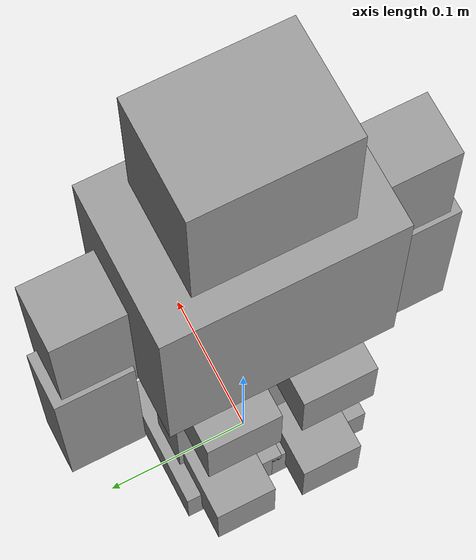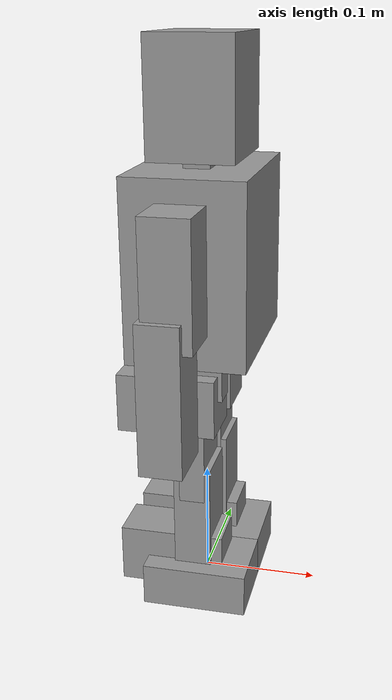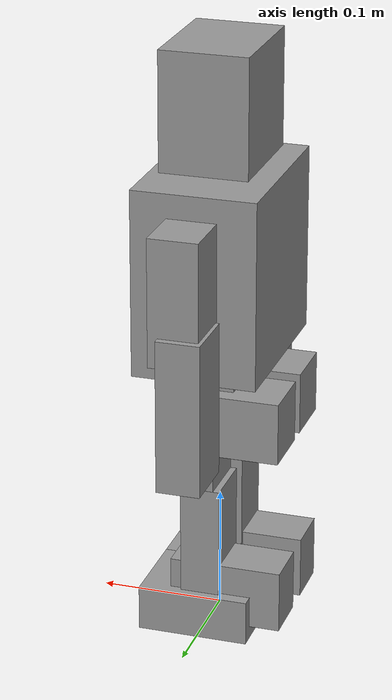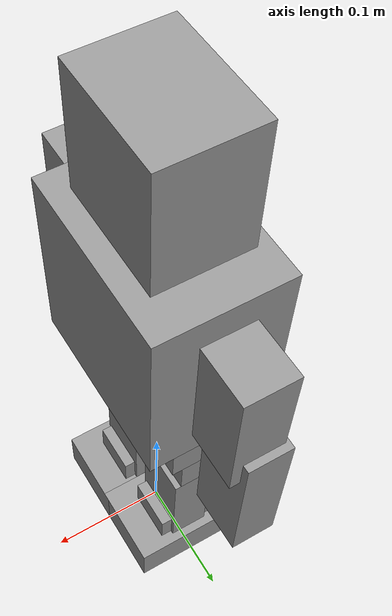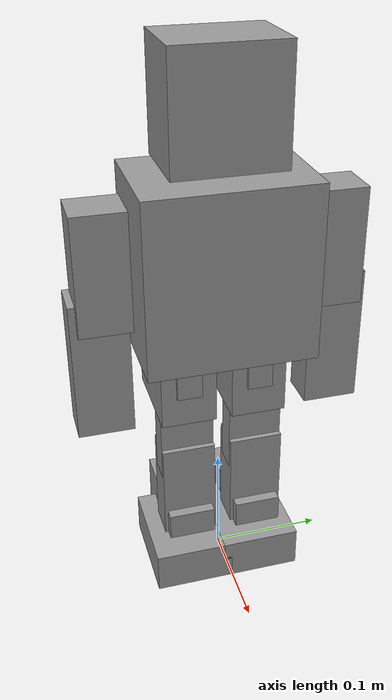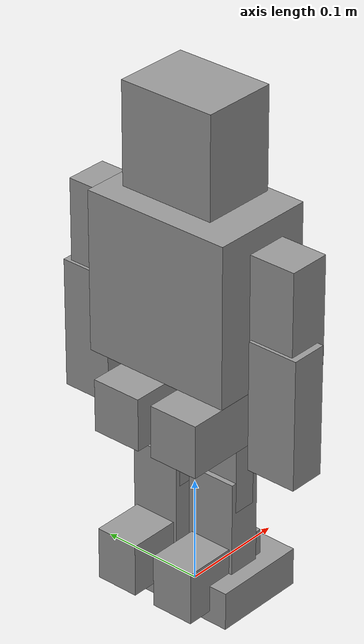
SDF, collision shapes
<sdf version="1.6">
 <model name="soccerbot">
  <link name="torso">
   <inertial>
    <mass>1</mass>
    <inertia>
     <ixx>0.003149</ixx>
     <ixy>0.000127</ixy>
     <ixz>0.000124</ixz>
     <iyy>0.004988</iyy>
     <iyz>8.9e-05</iyz>
     <izz>0.003395</izz>
    </inertia>
   </inertial>
   <pose>0 -0 0.301418 -0.037717 1.57079 1.53308</pose>
   <visual name="visual">
    <pose>-0.076 -0.05 -0.0725 0 -0 0</pose>
    <geometry><mesh><uri>model://meshes/Torso.stl</uri><scale>0.001 0.001 0.001</scale></mesh></geometry>
    <material>
     <lighting>1</lighting>
     <script><uri>file://media/materials/scripts/gazebo.material</uri><name>Gazebo/Grey</name></script>
     <shader type="vertex"><normal_map>__default__</normal_map></shader>
     <ambient>0.3 0.3 0.3 1</ambient>
     <diffuse>0.7 0.7 0.7 1</diffuse>
     <specular>0.01 0.01 0.01 1</specular>
     <emissive>0 0 0 1</emissive>
    </material>
   </visual>
   <collision name="collision">
    <geometry><box><size>0.152 0.1 0.145</size></box></geometry>
    <surface>
     <friction>
      <ode><mu>1</mu><mu2>1</mu2><fdir1>0 0 0</fdir1><slip1>0</slip1><slip2>0</slip2></ode>
      <torsional>
       <coefficient>1</coefficient>
       <patch_radius>0</patch_radius>
       <surface_radius>0</surface_radius>
       <use_patch_radius>1</use_patch_radius>
       <ode><slip>0</slip></ode>
      </torsional>
     </friction>
     <bounce><restitution_coefficient>0</restitution_coefficient><threshold>1e+06</threshold></bounce>
     <contact>
      <collide_without_contact>0</collide_without_contact>
      <collide_without_contact_bitmask>1</collide_without_contact_bitmask>
      <collide_bitmask>1</collide_bitmask>
      <ode>
       <soft_cfm>0</soft_cfm>
       <soft_erp>0.2</soft_erp>
       <kp>1e+13</kp>
       <kd>1</kd>
       <max_vel>0.01</max_vel>
       <min_depth>0</min_depth>
      </ode>
      <bullet>
       <split_impulse>1</split_impulse>
       <split_impulse_penetration_threshold>-0.01</split_impulse_penetration_threshold>
       <soft_cfm>0</soft_cfm>
       <soft_erp>0.2</soft_erp>
       <kp>1e+13</kp>
       <kd>1</kd>
      </bullet>
     </contact>
    </surface>
   </collision>
  </link>
  <link name="camera">
   <inertial>
    <mass>1</mass>
    <inertia>
     <ixx>0.166667</ixx>
     <ixy>0</ixy>
     <ixz>0</ixz>
     <iyy>0.166667</iyy>
     <iyz>0</iyz>
     <izz>0.166667</izz>
    </inertia>
   </inertial>
   <pose>0.1 -0 0.465818 0 -0 0</pose>
   <sensor name="camera1" type="camera">
    <update_rate>30</update_rate>
    <camera name="__default__">
     <horizontal_fov>1.39626</horizontal_fov>
     <image><width>320</width><height>240</height><format>R8G8B8</format></image>
     <clip><near>1</near><far>100</far></clip>
     <noise><type>gaussian</type><mean>0</mean><stddev>0.007</stddev></noise>
    </camera>
    <always_on>1</always_on>
    <visualize>1</visualize>
    <plugin name="camera_controller" filename="libgazebo_ros_camera.so">
     <alwaysOn>true</alwaysOn>
     <updateRate>0.0</updateRate>
     <cameraName>soccerbot/camera1</cameraName>
     <imageTopicName>image_raw</imageTopicName>
     <cameraInfoTopicName>camera_info</cameraInfoTopicName>
     <frameName>camera_link</frameName>
     <hackBaseline>0.07</hackBaseline>
     <distortionK1>0.0</distortionK1>
     <distortionK2>0.0</distortionK2>
     <distortionK3>0.0</distortionK3>
     <distortionT1>0.0</distortionT1>
     <distortionT2>0.0</distortionT2>
    </plugin>
   </sensor>
  </link>
  <link name="head">
   <inertial>
    <mass>1</mass>
    <inertia>
     <ixx>0.166667</ixx>
     <ixy>0</ixy>
     <ixz>0</ixz>
     <iyy>0.166667</iyy>
     <iyz>0</iyz>
     <izz>0.166667</izz>
    </inertia>
   </inertial>
   <pose>0 -0 0.395918 1.5708 -0 1.5708</pose>
   <visual name="visual">
    <geometry><mesh><uri>model://meshes/Head.stl</uri><scale>0.001 0.001 0.001</scale></mesh></geometry>
    <material>
     <lighting>1</lighting>
     <script><uri>file://media/materials/scripts/gazebo.material</uri><name>Gazebo/Grey</name></script>
     <shader type="vertex"><normal_map>__default__</normal_map></shader>
     <ambient>0.3 0.3 0.3 1</ambient>
     <diffuse>0.7 0.7 0.7 1</diffuse>
     <specular>0.01 0.01 0.01 1</specular>
     <emissive>0 0 0 1</emissive>
    </material>
   </visual>
   <collision name="collision">
    <pose>0 0.03648 0 0 -0 0</pose>
    <geometry><box><size>0.094 0.09596 0.0712</size></box></geometry>
    <surface>
     <friction>
      <ode><mu>1</mu><mu2>1</mu2><fdir1>0 0 0</fdir1><slip1>0</slip1><slip2>0</slip2></ode>
      <torsional>
       <coefficient>1</coefficient>
       <patch_radius>0</patch_radius>
       <surface_radius>0</surface_radius>
       <use_patch_radius>1</use_patch_radius>
       <ode><slip>0</slip></ode>
      </torsional>
     </friction>
     <bounce><restitution_coefficient>0</restitution_coefficient><threshold>1e+06</threshold></bounce>
     <contact>
      <collide_without_contact>0</collide_without_contact>
      <collide_without_contact_bitmask>1</collide_without_contact_bitmask>
      <collide_bitmask>1</collide_bitmask>
      <ode>
       <soft_cfm>0</soft_cfm>
       <soft_erp>0.2</soft_erp>
       <kp>1e+13</kp>
       <kd>1</kd>
       <max_vel>0.01</max_vel>
       <min_depth>0</min_depth>
      </ode>
      <bullet>
       <split_impulse>1</split_impulse>
       <split_impulse_penetration_threshold>-0.01</split_impulse_penetration_threshold>
       <soft_cfm>0</soft_cfm>
       <soft_erp>0.2</soft_erp>
       <kp>1e+13</kp>
       <kd>1</kd>
      </bullet>
     </contact>
    </surface>
   </collision>
  </link>
  <link name="left_ankle">
   <inertial>
    <mass>1</mass>
    <inertia>
     <ixx>0.166667</ixx>
     <ixy>0</ixy>
     <ixz>0</ixz>
     <iyy>0.166667</iyy>
     <iyz>0</iyz>
     <izz>0.166667</izz>
    </inertia>
    <pose>0 0 0 1.57073 -0 0</pose>
   </inertial>
   <pose>0 -0.0315 0.025328 1.57073 -0 0</pose>
   <visual name="visual">
    <geometry><mesh><uri>model://meshes/Left Ankle.stl</uri><scale>0.001 0.001 0.001</scale></mesh></geometry>
    <material>
     <lighting>1</lighting>
     <script><uri>file://media/materials/scripts/gazebo.material</uri><name>Gazebo/Grey</name></script>
     <shader type="vertex"><normal_map>__default__</normal_map></shader>
     <ambient>0.3 0.3 0.3 1</ambient>
     <diffuse>0.7 0.7 0.7 1</diffuse>
     <specular>0.01 0.01 0.01 1</specular>
     <emissive>0 0 0 1</emissive>
    </material>
   </visual>
   <collision name="collision">
    <pose>-0.020145 0.01031 0 0 -0 0</pose>
    <geometry><box><size>0.090769 0.0506 0.042</size></box></geometry>
    <surface>
     <friction>
      <ode><mu>1</mu><mu2>1</mu2><fdir1>0 0 0</fdir1><slip1>0</slip1><slip2>0</slip2></ode>
      <torsional>
       <coefficient>1</coefficient>
       <patch_radius>0</patch_radius>
       <surface_radius>0</surface_radius>
       <use_patch_radius>1</use_patch_radius>
       <ode><slip>0</slip></ode>
      </torsional>
     </friction>
     <bounce><restitution_coefficient>0</restitution_coefficient><threshold>1e+06</threshold></bounce>
     <contact>
      <collide_without_contact>0</collide_without_contact>
      <collide_without_contact_bitmask>1</collide_without_contact_bitmask>
      <collide_bitmask>1</collide_bitmask>
      <ode>
       <soft_cfm>0</soft_cfm>
       <soft_erp>0.2</soft_erp>
       <kp>1e+13</kp>
       <kd>1</kd>
       <max_vel>0.01</max_vel>
       <min_depth>0</min_depth>
      </ode>
      <bullet>
       <split_impulse>1</split_impulse>
       <split_impulse_penetration_threshold>-0.01</split_impulse_penetration_threshold>
       <soft_cfm>0</soft_cfm>
       <soft_erp>0.2</soft_erp>
       <kp>1e+13</kp>
       <kd>1</kd>
      </bullet>
     </contact>
    </surface>
   </collision>
  </link>
  <link name="left_bicep">
   <inertial>
    <mass>1</mass>
    <inertia>
     <ixx>0.166667</ixx>
     <ixy>0</ixy>
     <ixz>0</ixz>
     <iyy>0.166667</iyy>
     <iyz>0</iyz>
     <izz>0.166667</izz>
    </inertia>
   </inertial>
   <pose>0 -0.076 0.347678 1.5708 -0 0</pose>
   <visual name="visual">
    <geometry><mesh><uri>model://meshes/Left Bicep.stl</uri><scale>0.001 0.001 0.001</scale></mesh></geometry>
    <material>
     <lighting>1</lighting>
     <script><uri>file://media/materials/scripts/gazebo.material</uri><name>Gazebo/Grey</name></script>
     <shader type="vertex"><normal_map>__default__</normal_map></shader>
     <ambient>0.3 0.3 0.3 1</ambient>
     <diffuse>0.7 0.7 0.7 1</diffuse>
     <specular>0.01 0.01 0.01 1</specular>
     <emissive>0 0 0 1</emissive>
    </material>
   </visual>
   <collision name="collision">
    <pose>0 -0.04 0.0225 0 -0 0</pose>
    <geometry><box><size>0.04 0.103 0.045</size></box></geometry>
    <surface>
     <friction>
      <ode><mu>1</mu><mu2>1</mu2><fdir1>0 0 0</fdir1><slip1>0</slip1><slip2>0</slip2></ode>
      <torsional>
       <coefficient>1</coefficient>
       <patch_radius>0</patch_radius>
       <surface_radius>0</surface_radius>
       <use_patch_radius>1</use_patch_radius>
       <ode><slip>0</slip></ode>
      </torsional>
     </friction>
     <bounce><restitution_coefficient>0</restitution_coefficient><threshold>1e+06</threshold></bounce>
     <contact>
      <collide_without_contact>0</collide_without_contact>
      <collide_without_contact_bitmask>1</collide_without_contact_bitmask>
      <collide_bitmask>1</collide_bitmask>
      <ode>
       <soft_cfm>0</soft_cfm>
       <soft_erp>0.2</soft_erp>
       <kp>1e+13</kp>
       <kd>1</kd>
       <max_vel>0.01</max_vel>
       <min_depth>0</min_depth>
      </ode>
      <bullet>
       <split_impulse>1</split_impulse>
       <split_impulse_penetration_threshold>-0.01</split_impulse_penetration_threshold>
       <soft_cfm>0</soft_cfm>
       <soft_erp>0.2</soft_erp>
       <kp>1e+13</kp>
       <kd>1</kd>
      </bullet>
     </contact>
    </surface>
   </collision>
  </link>
  <link name="left_calve">
   <inertial>
    <mass>1</mass>
    <inertia>
     <ixx>0.166667</ixx>
     <ixy>0</ixy>
     <ixz>0</ixz>
     <iyy>0.166667</iyy>
     <iyz>0</iyz>
     <izz>0.166667</izz>
    </inertia>
   </inertial>
   <pose>0 -0.0315 0.025328 1.57079 -0 0</pose>
   <visual name="visual">
    <geometry><mesh><uri>model://meshes/Left Calve.stl</uri><scale>0.001 0.001 0.001</scale></mesh></geometry>
    <material>
     <lighting>1</lighting>
     <script><uri>file://media/materials/scripts/gazebo.material</uri><name>Gazebo/Grey</name></script>
     <shader type="vertex"><normal_map>__default__</normal_map></shader>
     <ambient>0.3 0.3 0.3 1</ambient>
     <diffuse>0.7 0.7 0.7 1</diffuse>
     <specular>0.01 0.01 0.01 1</specular>
     <emissive>0 0 0 1</emissive>
    </material>
   </visual>
   <collision name="collision">
    <pose>0 0.04885 0 0 -0 0</pose>
    <geometry><box><size>0.031883 0.105683 0.048</size></box></geometry>
    <surface>
     <friction>
      <ode><mu>1</mu><mu2>1</mu2><fdir1>0 0 0</fdir1><slip1>0</slip1><slip2>0</slip2></ode>
      <torsional>
       <coefficient>1</coefficient>
       <patch_radius>0</patch_radius>
       <surface_radius>0</surface_radius>
       <use_patch_radius>1</use_patch_radius>
       <ode><slip>0</slip></ode>
      </torsional>
     </friction>
     <bounce><restitution_coefficient>0</restitution_coefficient><threshold>1e+06</threshold></bounce>
     <contact>
      <collide_without_contact>0</collide_without_contact>
      <collide_without_contact_bitmask>1</collide_without_contact_bitmask>
      <collide_bitmask>1</collide_bitmask>
      <ode>
       <soft_cfm>0</soft_cfm>
       <soft_erp>0.2</soft_erp>
       <kp>1e+13</kp>
       <kd>1</kd>
       <max_vel>0.01</max_vel>
       <min_depth>0</min_depth>
      </ode>
      <bullet>
       <split_impulse>1</split_impulse>
       <split_impulse_penetration_threshold>-0.01</split_impulse_penetration_threshold>
       <soft_cfm>0</soft_cfm>
       <soft_erp>0.2</soft_erp>
       <kp>1e+13</kp>
       <kd>1</kd>
      </bullet>
     </contact>
    </surface>
   </collision>
  </link>
  <link name="left_foot">
   <inertial>
    <mass>1</mass>
    <inertia>
     <ixx>0.166667</ixx>
     <ixy>0</ixy>
     <ixz>0</ixz>
     <iyy>0.166667</iyy>
     <iyz>0</iyz>
     <izz>0.166667</izz>
    </inertia>
    <pose>0 0 0 1.57073 -0 0</pose>
   </inertial>
   <pose>0 -0.0315 0.025328 1.57073 -0 0</pose>
   <visual name="visual">
    <geometry><mesh><uri>model://meshes/Left Foot.stl</uri><scale>0.001 0.001 0.001</scale></mesh></geometry>
    <material>
     <lighting>1</lighting>
     <script><uri>file://media/materials/scripts/gazebo.material</uri><name>Gazebo/Grey</name></script>
     <shader type="vertex"><normal_map>__default__</normal_map></shader>
     <ambient>0.3 0.3 0.3 1</ambient>
     <diffuse>0.7 0.7 0.7 1</diffuse>
     <specular>0.01 0.01 0.01 1</specular>
     <emissive>0 0 0 1</emissive>
    </material>
   </visual>
   <collision name="collision">
    <pose>0.004015 -0.00737 0.00385 0 -0 0</pose>
    <geometry><box><size>0.09 0.03674 0.07</size></box></geometry>
    <surface>
     <friction>
      <ode><mu>1</mu><mu2>1</mu2><fdir1>0 0 0</fdir1><slip1>0</slip1><slip2>0</slip2></ode>
      <torsional>
       <coefficient>1</coefficient>
       <patch_radius>0</patch_radius>
       <surface_radius>0</surface_radius>
       <use_patch_radius>1</use_patch_radius>
       <ode><slip>0</slip></ode>
      </torsional>
     </friction>
     <bounce><restitution_coefficient>0</restitution_coefficient><threshold>1e+06</threshold></bounce>
     <contact>
      <collide_without_contact>0</collide_without_contact>
      <collide_without_contact_bitmask>1</collide_without_contact_bitmask>
      <collide_bitmask>1</collide_bitmask>
      <ode>
       <soft_cfm>0</soft_cfm>
       <soft_erp>0.2</soft_erp>
       <kp>1e+13</kp>
       <kd>1</kd>
       <max_vel>0.01</max_vel>
       <min_depth>0</min_depth>
      </ode>
      <bullet>
       <split_impulse>1</split_impulse>
       <split_impulse_penetration_threshold>-0.01</split_impulse_penetration_threshold>
       <soft_cfm>0</soft_cfm>
       <soft_erp>0.2</soft_erp>
       <kp>1e+13</kp>
       <kd>1</kd>
      </bullet>
     </contact>
    </surface>
   </collision>
  </link>
  <link name="left_forearm">
   <inertial>
    <mass>1</mass>
    <inertia>
     <ixx>0.166667</ixx>
     <ixy>0</ixy>
     <ixz>0</ixz>
     <iyy>0.166667</iyy>
     <iyz>0</iyz>
     <izz>0.166667</izz>
    </inertia>
   </inertial>
   <pose>0 -0.076 0.267678 1.5708 -0 0</pose>
   <visual name="visual">
    <geometry><mesh><uri>model://meshes/Left Forearm.stl</uri><scale>0.001 0.001 0.001</scale></mesh></geometry>
    <material>
     <lighting>1</lighting>
     <script><uri>file://media/materials/scripts/gazebo.material</uri><name>Gazebo/Grey</name></script>
     <shader type="vertex"><normal_map>__default__</normal_map></shader>
     <ambient>0.3 0.3 0.3 1</ambient>
     <diffuse>0.7 0.7 0.7 1</diffuse>
     <specular>0.01 0.01 0.01 1</specular>
     <emissive>0 0 0 1</emissive>
    </material>
   </visual>
   <collision name="collision">
    <pose>-0.0055 -0.049 0.0265 0 -0 0</pose>
    <geometry><box><size>0.035 0.124 0.049</size></box></geometry>
    <surface>
     <friction>
      <ode><mu>1</mu><mu2>1</mu2><fdir1>0 0 0</fdir1><slip1>0</slip1><slip2>0</slip2></ode>
      <torsional>
       <coefficient>1</coefficient>
       <patch_radius>0</patch_radius>
       <surface_radius>0</surface_radius>
       <use_patch_radius>1</use_patch_radius>
       <ode><slip>0</slip></ode>
      </torsional>
     </friction>
     <bounce><restitution_coefficient>0</restitution_coefficient><threshold>1e+06</threshold></bounce>
     <contact>
      <collide_without_contact>0</collide_without_contact>
      <collide_without_contact_bitmask>1</collide_without_contact_bitmask>
      <collide_bitmask>1</collide_bitmask>
      <ode>
       <soft_cfm>0</soft_cfm>
       <soft_erp>0.2</soft_erp>
       <kp>1e+13</kp>
       <kd>1</kd>
       <max_vel>0.01</max_vel>
       <min_depth>0</min_depth>
      </ode>
      <bullet>
       <split_impulse>1</split_impulse>
       <split_impulse_penetration_threshold>-0.01</split_impulse_penetration_threshold>
       <soft_cfm>0</soft_cfm>
       <soft_erp>0.2</soft_erp>
       <kp>1e+13</kp>
       <kd>1</kd>
      </bullet>
     </contact>
    </surface>
   </collision>
  </link>
  <link name="left_hip_front">
   <inertial>
    <mass>1</mass>
    <inertia>
     <ixx>0.166667</ixx>
     <ixy>0</ixy>
     <ixz>0</ixz>
     <iyy>0.166667</iyy>
     <iyz>0</iyz>
     <izz>0.166667</izz>
    </inertia>
   </inertial>
   <pose>0 -0.0315 0.197 1.57079 -0 0</pose>
   <visual name="visual">
    <geometry><mesh><uri>model://meshes/Left Hip Front.stl</uri><scale>0.001 0.001 0.001</scale></mesh></geometry>
    <material>
     <lighting>1</lighting>
     <script><uri>file://media/materials/scripts/gazebo.material</uri><name>Gazebo/Grey</name></script>
     <shader type="vertex"><normal_map>__default__</normal_map></shader>
     <ambient>0.3 0.3 0.3 1</ambient>
     <diffuse>0.7 0.7 0.7 1</diffuse>
     <specular>0.01 0.01 0.01 1</specular>
     <emissive>0 0 0 1</emissive>
    </material>
   </visual>
   <collision name="collision">
    <pose>-0.02187 -0.013322 0 0 -0 0</pose>
    <geometry><box><size>0.083747 0.0506 0.04885</size></box></geometry>
    <surface>
     <friction>
      <ode><mu>1</mu><mu2>1</mu2><fdir1>0 0 0</fdir1><slip1>0</slip1><slip2>0</slip2></ode>
      <torsional>
       <coefficient>1</coefficient>
       <patch_radius>0</patch_radius>
       <surface_radius>0</surface_radius>
       <use_patch_radius>1</use_patch_radius>
       <ode><slip>0</slip></ode>
      </torsional>
     </friction>
     <bounce><restitution_coefficient>0</restitution_coefficient><threshold>1e+06</threshold></bounce>
     <contact>
      <collide_without_contact>0</collide_without_contact>
      <collide_without_contact_bitmask>1</collide_without_contact_bitmask>
      <collide_bitmask>1</collide_bitmask>
      <ode>
       <soft_cfm>0</soft_cfm>
       <soft_erp>0.2</soft_erp>
       <kp>1e+13</kp>
       <kd>1</kd>
       <max_vel>0.01</max_vel>
       <min_depth>0</min_depth>
      </ode>
      <bullet>
       <split_impulse>1</split_impulse>
       <split_impulse_penetration_threshold>-0.01</split_impulse_penetration_threshold>
       <soft_cfm>0</soft_cfm>
       <soft_erp>0.2</soft_erp>
       <kp>1e+13</kp>
       <kd>1</kd>
      </bullet>
     </contact>
    </surface>
   </collision>
  </link>
  <link name="left_hip_side">
   <inertial>
    <mass>1</mass>
    <inertia>
     <ixx>0.166667</ixx>
     <ixy>0</ixy>
     <ixz>0</ixz>
     <iyy>0.166667</iyy>
     <iyz>0</iyz>
     <izz>0.166667</izz>
    </inertia>
   </inertial>
   <pose>0 -0.031494 0.197 1.5708 -0 1.5708</pose>
   <visual name="visual">
    <geometry><mesh><uri>model://meshes/Left Hip Side.stl</uri><scale>0.001 0.001 0.001</scale></mesh></geometry>
    <material>
     <lighting>1</lighting>
     <script><uri>file://media/materials/scripts/gazebo.material</uri><name>Gazebo/Grey</name></script>
     <shader type="vertex"><normal_map>__default__</normal_map></shader>
     <ambient>0.3 0.3 0.3 1</ambient>
     <diffuse>0.7 0.7 0.7 1</diffuse>
     <specular>0.01 0.01 0.01 1</specular>
     <emissive>0 0 0 1</emissive>
    </material>
   </visual>
   <collision name="collision">
    <pose>0 0.009 0 0 -0 0</pose>
    <geometry><box><size>0.022 0.039 0.0475</size></box></geometry>
    <surface>
     <friction>
      <ode><mu>1</mu><mu2>1</mu2><fdir1>0 0 0</fdir1><slip1>0</slip1><slip2>0</slip2></ode>
      <torsional>
       <coefficient>1</coefficient>
       <patch_radius>0</patch_radius>
       <surface_radius>0</surface_radius>
       <use_patch_radius>1</use_patch_radius>
       <ode><slip>0</slip></ode>
      </torsional>
     </friction>
     <bounce><restitution_coefficient>0</restitution_coefficient><threshold>1e+06</threshold></bounce>
     <contact>
      <collide_without_contact>0</collide_without_contact>
      <collide_without_contact_bitmask>1</collide_without_contact_bitmask>
      <collide_bitmask>1</collide_bitmask>
      <ode>
       <soft_cfm>0</soft_cfm>
       <soft_erp>0.2</soft_erp>
       <kp>1e+13</kp>
       <kd>1</kd>
       <max_vel>0.01</max_vel>
       <min_depth>0</min_depth>
      </ode>
      <bullet>
       <split_impulse>1</split_impulse>
       <split_impulse_penetration_threshold>-0.01</split_impulse_penetration_threshold>
       <soft_cfm>0</soft_cfm>
       <soft_erp>0.2</soft_erp>
       <kp>1e+13</kp>
       <kd>1</kd>
      </bullet>
     </contact>
    </surface>
   </collision>
  </link>
  <link name="left_thigh">
   <inertial>
    <mass>1</mass>
    <inertia>
     <ixx>0.166667</ixx>
     <ixy>0</ixy>
     <ixz>0</ixz>
     <iyy>0.166667</iyy>
     <iyz>0</iyz>
     <izz>0.166667</izz>
    </inertia>
   </inertial>
   <pose>0 -0.0315 0.197 1.5708 -0 0</pose>
   <visual name="visual">
    <geometry><mesh><uri>model://meshes/Left Thigh.stl</uri><scale>0.001 0.001 0.001</scale></mesh></geometry>
    <material>
     <lighting>1</lighting>
     <script><uri>file://media/materials/scripts/gazebo.material</uri><name>Gazebo/Grey</name></script>
     <shader type="vertex"><normal_map>__default__</normal_map></shader>
     <ambient>0.3 0.3 0.3 1</ambient>
     <diffuse>0.7 0.7 0.7 1</diffuse>
     <specular>0.01 0.01 0.01 1</specular>
     <emissive>0 0 0 1</emissive>
    </material>
   </visual>
   <collision name="collision">
    <pose>0 -0.0445 0 0 -0 0</pose>
    <geometry><box><size>0.022 0.111 0.048</size></box></geometry>
    <surface>
     <friction>
      <ode><mu>1</mu><mu2>1</mu2><fdir1>0 0 0</fdir1><slip1>0</slip1><slip2>0</slip2></ode>
      <torsional>
       <coefficient>1</coefficient>
       <patch_radius>0</patch_radius>
       <surface_radius>0</surface_radius>
       <use_patch_radius>1</use_patch_radius>
       <ode><slip>0</slip></ode>
      </torsional>
     </friction>
     <bounce><restitution_coefficient>0</restitution_coefficient><threshold>1e+06</threshold></bounce>
     <contact>
      <collide_without_contact>0</collide_without_contact>
      <collide_without_contact_bitmask>1</collide_without_contact_bitmask>
      <collide_bitmask>1</collide_bitmask>
      <ode>
       <soft_cfm>0</soft_cfm>
       <soft_erp>0.2</soft_erp>
       <kp>1e+13</kp>
       <kd>1</kd>
       <max_vel>0.01</max_vel>
       <min_depth>0</min_depth>
      </ode>
      <bullet>
       <split_impulse>1</split_impulse>
       <split_impulse_penetration_threshold>-0.01</split_impulse_penetration_threshold>
       <soft_cfm>0</soft_cfm>
       <soft_erp>0.2</soft_erp>
       <kp>1e+13</kp>
       <kd>1</kd>
      </bullet>
     </contact>
    </surface>
   </collision>
  </link>
  <link name="neck">
   <inertial>
    <mass>1</mass>
    <inertia>
     <ixx>0.166667</ixx>
     <ixy>0</ixy>
     <ixz>0</ixz>
     <iyy>0.166667</iyy>
     <iyz>0</iyz>
     <izz>0.166667</izz>
    </inertia>
   </inertial>
   <pose>0 -0 0.373918 1.57079 -0 1.57079</pose>
   <visual name="visual">
    <geometry><mesh><uri>model://meshes/Neck.stl</uri><scale>0.001 0.001 0.001</scale></mesh></geometry>
    <material>
     <lighting>1</lighting>
     <script><uri>file://media/materials/scripts/gazebo.material</uri><name>Gazebo/Grey</name></script>
     <shader type="vertex"><normal_map>__default__</normal_map></shader>
     <ambient>0.3 0.3 0.3 1</ambient>
     <diffuse>0.7 0.7 0.7 1</diffuse>
     <specular>0.01 0.01 0.01 1</specular>
     <emissive>0 0 0 1</emissive>
    </material>
   </visual>
   <collision name="collision">
    <pose>0 0.0165 0 0 -0 0</pose>
    <geometry><box><size>0.0523 0.033 0.022</size></box></geometry>
    <surface>
     <friction>
      <ode><mu>1</mu><mu2>1</mu2><fdir1>0 0 0</fdir1><slip1>0</slip1><slip2>0</slip2></ode>
      <torsional>
       <coefficient>1</coefficient>
       <patch_radius>0</patch_radius>
       <surface_radius>0</surface_radius>
       <use_patch_radius>1</use_patch_radius>
       <ode><slip>0</slip></ode>
      </torsional>
     </friction>
     <bounce><restitution_coefficient>0</restitution_coefficient><threshold>1e+06</threshold></bounce>
     <contact>
      <collide_without_contact>0</collide_without_contact>
      <collide_without_contact_bitmask>1</collide_without_contact_bitmask>
      <collide_bitmask>1</collide_bitmask>
      <ode>
       <soft_cfm>0</soft_cfm>
       <soft_erp>0.2</soft_erp>
       <kp>1e+13</kp>
       <kd>1</kd>
       <max_vel>0.01</max_vel>
       <min_depth>0</min_depth>
      </ode>
      <bullet>
       <split_impulse>1</split_impulse>
       <split_impulse_penetration_threshold>-0.01</split_impulse_penetration_threshold>
       <soft_cfm>0</soft_cfm>
       <soft_erp>0.2</soft_erp>
       <kp>1e+13</kp>
       <kd>1</kd>
      </bullet>
     </contact>
    </surface>
   </collision>
  </link>
  <link name="right_ankle">
   <inertial>
    <mass>1</mass>
    <inertia>
     <ixx>0.166667</ixx>
     <ixy>0</ixy>
     <ixz>0</ixz>
     <iyy>0.166667</iyy>
     <iyz>0</iyz>
     <izz>0.166667</izz>
    </inertia>
    <pose>0 0 0 1.57073 -0 0</pose>
   </inertial>
   <pose>0 0.031494 0.025328 1.57073 -0 0</pose>
   <visual name="visual">
    <geometry><mesh><uri>model://meshes/Right Ankle.stl</uri><scale>0.001 0.001 0.001</scale></mesh></geometry>
    <material>
     <lighting>1</lighting>
     <script><uri>file://media/materials/scripts/gazebo.material</uri><name>Gazebo/Grey</name></script>
     <shader type="vertex"><normal_map>__default__</normal_map></shader>
     <ambient>0.3 0.3 0.3 1</ambient>
     <diffuse>0.7 0.7 0.7 1</diffuse>
     <specular>0.01 0.01 0.01 1</specular>
     <emissive>0 0 0 1</emissive>
    </material>
   </visual>
   <collision name="collision">
    <pose>-0.020145 0.01031 0 0 -0 0</pose>
    <geometry><box><size>0.090769 0.0506 0.042</size></box></geometry>
    <surface>
     <friction>
      <ode><mu>1</mu><mu2>1</mu2><fdir1>0 0 0</fdir1><slip1>0</slip1><slip2>0</slip2></ode>
      <torsional>
       <coefficient>1</coefficient>
       <patch_radius>0</patch_radius>
       <surface_radius>0</surface_radius>
       <use_patch_radius>1</use_patch_radius>
       <ode><slip>0</slip></ode>
      </torsional>
     </friction>
     <bounce><restitution_coefficient>0</restitution_coefficient><threshold>1e+06</threshold></bounce>
     <contact>
      <collide_without_contact>0</collide_without_contact>
      <collide_without_contact_bitmask>1</collide_without_contact_bitmask>
      <collide_bitmask>1</collide_bitmask>
      <ode>
       <soft_cfm>0</soft_cfm>
       <soft_erp>0.2</soft_erp>
       <kp>1e+13</kp>
       <kd>1</kd>
       <max_vel>0.01</max_vel>
       <min_depth>0</min_depth>
      </ode>
      <bullet>
       <split_impulse>1</split_impulse>
       <split_impulse_penetration_threshold>-0.01</split_impulse_penetration_threshold>
       <soft_cfm>0</soft_cfm>
       <soft_erp>0.2</soft_erp>
       <kp>1e+13</kp>
       <kd>1</kd>
      </bullet>
     </contact>
    </surface>
   </collision>
  </link>
  <link name="right_bicep">
   <inertial>
    <mass>1</mass>
    <inertia>
     <ixx>0.166667</ixx>
     <ixy>0</ixy>
     <ixz>0</ixz>
     <iyy>0.166667</iyy>
     <iyz>0</iyz>
     <izz>0.166667</izz>
    </inertia>
   </inertial>
   <pose>0 0.076 0.347678 1.5708 -0 0</pose>
   <visual name="visual">
    <geometry><mesh><uri>model://meshes/Right Bicep.stl</uri><scale>0.001 0.001 0.001</scale></mesh></geometry>
    <material>
     <lighting>1</lighting>
     <script><uri>file://media/materials/scripts/gazebo.material</uri><name>Gazebo/Grey</name></script>
     <shader type="vertex"><normal_map>__default__</normal_map></shader>
     <ambient>0.3 0.3 0.3 1</ambient>
     <diffuse>0.7 0.7 0.7 1</diffuse>
     <specular>0.01 0.01 0.01 1</specular>
     <emissive>0 0 0 1</emissive>
    </material>
   </visual>
   <collision name="collision">
    <pose>0 -0.04 -0.0225 0 -0 0</pose>
    <geometry><box><size>0.04 0.103 0.045</size></box></geometry>
    <surface>
     <friction>
      <ode><mu>1</mu><mu2>1</mu2><fdir1>0 0 0</fdir1><slip1>0</slip1><slip2>0</slip2></ode>
      <torsional>
       <coefficient>1</coefficient>
       <patch_radius>0</patch_radius>
       <surface_radius>0</surface_radius>
       <use_patch_radius>1</use_patch_radius>
       <ode><slip>0</slip></ode>
      </torsional>
     </friction>
     <bounce><restitution_coefficient>0</restitution_coefficient><threshold>1e+06</threshold></bounce>
     <contact>
      <collide_without_contact>0</collide_without_contact>
      <collide_without_contact_bitmask>1</collide_without_contact_bitmask>
      <collide_bitmask>1</collide_bitmask>
      <ode>
       <soft_cfm>0</soft_cfm>
       <soft_erp>0.2</soft_erp>
       <kp>1e+13</kp>
       <kd>1</kd>
       <max_vel>0.01</max_vel>
       <min_depth>0</min_depth>
      </ode>
      <bullet>
       <split_impulse>1</split_impulse>
       <split_impulse_penetration_threshold>-0.01</split_impulse_penetration_threshold>
       <soft_cfm>0</soft_cfm>
       <soft_erp>0.2</soft_erp>
       <kp>1e+13</kp>
       <kd>1</kd>
      </bullet>
     </contact>
    </surface>
   </collision>
  </link>
  <link name="right_calve">
   <inertial>
    <mass>1</mass>
    <inertia>
     <ixx>0.166667</ixx>
     <ixy>0</ixy>
     <ixz>0</ixz>
     <iyy>0.166667</iyy>
     <iyz>0</iyz>
     <izz>0.166667</izz>
    </inertia>
   </inertial>
   <pose>0 0.031494 0.025328 1.57079 -0 0</pose>
   <visual name="visual">
    <geometry><mesh><uri>model://meshes/Right Calve.stl</uri><scale>0.001 0.001 0.001</scale></mesh></geometry>
    <material>
     <lighting>1</lighting>
     <script><uri>file://media/materials/scripts/gazebo.material</uri><name>Gazebo/Grey</name></script>
     <shader type="vertex"><normal_map>__default__</normal_map></shader>
     <ambient>0.3 0.3 0.3 1</ambient>
     <diffuse>0.7 0.7 0.7 1</diffuse>
     <specular>0.01 0.01 0.01 1</specular>
     <emissive>0 0 0 1</emissive>
    </material>
   </visual>
   <collision name="collision">
    <pose>0 0.04885 0 0 -0 0</pose>
    <geometry><box><size>0.031883 0.105683 0.048</size></box></geometry>
    <surface>
     <friction>
      <ode><mu>1</mu><mu2>1</mu2><fdir1>0 0 0</fdir1><slip1>0</slip1><slip2>0</slip2></ode>
      <torsional>
       <coefficient>1</coefficient>
       <patch_radius>0</patch_radius>
       <surface_radius>0</surface_radius>
       <use_patch_radius>1</use_patch_radius>
       <ode><slip>0</slip></ode>
      </torsional>
     </friction>
     <bounce><restitution_coefficient>0</restitution_coefficient><threshold>1e+06</threshold></bounce>
     <contact>
      <collide_without_contact>0</collide_without_contact>
      <collide_without_contact_bitmask>1</collide_without_contact_bitmask>
      <collide_bitmask>1</collide_bitmask>
      <ode>
       <soft_cfm>0</soft_cfm>
       <soft_erp>0.2</soft_erp>
       <kp>1e+13</kp>
       <kd>1</kd>
       <max_vel>0.01</max_vel>
       <min_depth>0</min_depth>
      </ode>
      <bullet>
       <split_impulse>1</split_impulse>
       <split_impulse_penetration_threshold>-0.01</split_impulse_penetration_threshold>
       <soft_cfm>0</soft_cfm>
       <soft_erp>0.2</soft_erp>
       <kp>1e+13</kp>
       <kd>1</kd>
      </bullet>
     </contact>
    </surface>
   </collision>
  </link>
  <link name="right_foot">
   <inertial>
    <mass>1</mass>
    <inertia>
     <ixx>0.166667</ixx>
     <ixy>0</ixy>
     <ixz>0</ixz>
     <iyy>0.166667</iyy>
     <iyz>0</iyz>
     <izz>0.166667</izz>
    </inertia>
    <pose>0 0 0 1.57073 -0 0</pose>
   </inertial>
   <pose>0 0.0315 0.025328 1.57073 -0 0</pose>
   <visual name="visual">
    <geometry><mesh><uri>model://meshes/Right foot.stl</uri><scale>0.001 0.001 0.001</scale></mesh></geometry>
    <material>
     <lighting>1</lighting>
     <script><uri>file://media/materials/scripts/gazebo.material</uri><name>Gazebo/Grey</name></script>
     <shader type="vertex"><normal_map>__default__</normal_map></shader>
     <ambient>0.3 0.3 0.3 1</ambient>
     <diffuse>0.7 0.7 0.7 1</diffuse>
     <specular>0.01 0.01 0.01 1</specular>
     <emissive>0 0 0 1</emissive>
    </material>
   </visual>
   <collision name="collision">
    <pose>0.004015 -0.00737 0.00385 0 -0 0</pose>
    <geometry><box><size>0.09 0.03674 0.07</size></box></geometry>
    <surface>
     <friction>
      <ode><mu>1</mu><mu2>1</mu2><fdir1>0 0 0</fdir1><slip1>0</slip1><slip2>0</slip2></ode>
      <torsional>
       <coefficient>1</coefficient>
       <patch_radius>0</patch_radius>
       <surface_radius>0</surface_radius>
       <use_patch_radius>1</use_patch_radius>
       <ode><slip>0</slip></ode>
      </torsional>
     </friction>
     <bounce><restitution_coefficient>0</restitution_coefficient><threshold>1e+06</threshold></bounce>
     <contact>
      <collide_without_contact>0</collide_without_contact>
      <collide_without_contact_bitmask>1</collide_without_contact_bitmask>
      <collide_bitmask>1</collide_bitmask>
      <ode>
       <soft_cfm>0</soft_cfm>
       <soft_erp>0.2</soft_erp>
       <kp>1e+13</kp>
       <kd>1</kd>
       <max_vel>0.01</max_vel>
       <min_depth>0</min_depth>
      </ode>
      <bullet>
       <split_impulse>1</split_impulse>
       <split_impulse_penetration_threshold>-0.01</split_impulse_penetration_threshold>
       <soft_cfm>0</soft_cfm>
       <soft_erp>0.2</soft_erp>
       <kp>1e+13</kp>
       <kd>1</kd>
      </bullet>
     </contact>
    </surface>
   </collision>
  </link>
  <link name="right_forearm">
   <inertial>
    <mass>1</mass>
    <inertia>
     <ixx>0.166667</ixx>
     <ixy>0</ixy>
     <ixz>0</ixz>
     <iyy>0.166667</iyy>
     <iyz>0</iyz>
     <izz>0.166667</izz>
    </inertia>
   </inertial>
   <pose>0 0.076 0.267678 1.5708 -0 0</pose>
   <visual name="visual">
    <geometry><mesh><uri>model://meshes/Right Forearm.stl</uri><scale>0.001 0.001 0.001</scale></mesh></geometry>
    <material>
     <lighting>1</lighting>
     <script><uri>file://media/materials/scripts/gazebo.material</uri><name>Gazebo/Grey</name></script>
     <shader type="vertex"><normal_map>__default__</normal_map></shader>
     <ambient>0.3 0.3 0.3 1</ambient>
     <diffuse>0.7 0.7 0.7 1</diffuse>
     <specular>0.01 0.01 0.01 1</specular>
     <emissive>0 0 0 1</emissive>
    </material>
   </visual>
   <collision name="collision">
    <pose>-0.0055 -0.049 -0.0265 0 -0 0</pose>
    <geometry><box><size>0.035 0.124 0.049</size></box></geometry>
    <surface>
     <friction>
      <ode><mu>1</mu><mu2>1</mu2><fdir1>0 0 0</fdir1><slip1>0</slip1><slip2>0</slip2></ode>
      <torsional>
       <coefficient>1</coefficient>
       <patch_radius>0</patch_radius>
       <surface_radius>0</surface_radius>
       <use_patch_radius>1</use_patch_radius>
       <ode><slip>0</slip></ode>
      </torsional>
     </friction>
     <bounce><restitution_coefficient>0</restitution_coefficient><threshold>1e+06</threshold></bounce>
     <contact>
      <collide_without_contact>0</collide_without_contact>
      <collide_without_contact_bitmask>1</collide_without_contact_bitmask>
      <collide_bitmask>1</collide_bitmask>
      <ode>
       <soft_cfm>0</soft_cfm>
       <soft_erp>0.2</soft_erp>
       <kp>1e+13</kp>
       <kd>1</kd>
       <max_vel>0.01</max_vel>
       <min_depth>0</min_depth>
      </ode>
      <bullet>
       <split_impulse>1</split_impulse>
       <split_impulse_penetration_threshold>-0.01</split_impulse_penetration_threshold>
       <soft_cfm>0</soft_cfm>
       <soft_erp>0.2</soft_erp>
       <kp>1e+13</kp>
       <kd>1</kd>
      </bullet>
     </contact>
    </surface>
   </collision>
  </link>
  <link name="right_hip_front">
   <inertial>
    <mass>1</mass>
    <inertia>
     <ixx>0.166667</ixx>
     <ixy>0</ixy>
     <ixz>0</ixz>
     <iyy>0.166667</iyy>
     <iyz>0</iyz>
     <izz>0.166667</izz>
    </inertia>
   </inertial>
   <pose>0 0.031494 0.197 1.57079 -0 0</pose>
   <visual name="visual">
    <geometry>
     <mesh><uri>model://meshes/Right Hip Front.stl</uri><scale>0.001 0.001 0.001</scale></mesh>
    </geometry>
    <material>
     <lighting>1</lighting>
     <script><uri>file://media/materials/scripts/gazebo.material</uri><name>Gazebo/Grey</name></script>
     <shader type="vertex"><normal_map>__default__</normal_map></shader>
     <ambient>0.3 0.3 0.3 1</ambient>
     <diffuse>0.7 0.7 0.7 1</diffuse>
     <specular>0.01 0.01 0.01 1</specular>
     <emissive>0 0 0 1</emissive>
    </material>
   </visual>
   <collision name="collision">
    <pose>-0.02187 -0.013322 0 0 -0 0</pose>
    <geometry><box><size>0.083747 0.0506 0.04885</size></box></geometry>
    <surface>
     <friction>
      <ode><mu>1</mu><mu2>1</mu2><fdir1>0 0 0</fdir1><slip1>0</slip1><slip2>0</slip2></ode>
      <torsional>
       <coefficient>1</coefficient>
       <patch_radius>0</patch_radius>
       <surface_radius>0</surface_radius>
       <use_patch_radius>1</use_patch_radius>
       <ode><slip>0</slip></ode>
      </torsional>
     </friction>
     <bounce><restitution_coefficient>0</restitution_coefficient><threshold>1e+06</threshold></bounce>
     <contact>
      <collide_without_contact>0</collide_without_contact>
      <collide_without_contact_bitmask>1</collide_without_contact_bitmask>
      <collide_bitmask>1</collide_bitmask>
      <ode>
       <soft_cfm>0</soft_cfm>
       <soft_erp>0.2</soft_erp>
       <kp>1e+13</kp>
       <kd>1</kd>
       <max_vel>0.01</max_vel>
       <min_depth>0</min_depth>
      </ode>
      <bullet>
       <split_impulse>1</split_impulse>
       <split_impulse_penetration_threshold>-0.01</split_impulse_penetration_threshold>
       <soft_cfm>0</soft_cfm>
       <soft_erp>0.2</soft_erp>
       <kp>1e+13</kp>
       <kd>1</kd>
      </bullet>
     </contact>
    </surface>
   </collision>
  </link>
  <link name="right_hip_side">
   <inertial>
    <mass>1</mass>
    <inertia>
     <ixx>0.166667</ixx>
     <ixy>0</ixy>
     <ixz>0</ixz>
     <iyy>0.166667</iyy>
     <iyz>0</iyz>
     <izz>0.166667</izz>
    </inertia>
   </inertial>
   <pose>0 0.031494 0.197 1.5708 -0 1.5708</pose>
   <visual name="visual">
    <geometry><mesh><uri>model://meshes/Right Hip Side.stl</uri><scale>0.001 0.001 0.001</scale></mesh></geometry>
    <material>
     <lighting>1</lighting>
     <script><uri>file://media/materials/scripts/gazebo.material</uri><name>Gazebo/Grey</name></script>
     <shader type="vertex"><normal_map>__default__</normal_map></shader>
     <ambient>0.3 0.3 0.3 1</ambient>
     <diffuse>0.7 0.7 0.7 1</diffuse>
     <specular>0.01 0.01 0.01 1</specular>
     <emissive>0 0 0 1</emissive>
    </material>
   </visual>
   <collision name="collision">
    <pose>0 0.009 0 0 -0 0</pose>
    <geometry><box><size>0.022 0.039 0.0475</size></box></geometry>
    <surface>
     <friction>
      <ode><mu>1</mu><mu2>1</mu2><fdir1>0 0 0</fdir1><slip1>0</slip1><slip2>0</slip2></ode>
      <torsional>
       <coefficient>1</coefficient>
       <patch_radius>0</patch_radius>
       <surface_radius>0</surface_radius>
       <use_patch_radius>1</use_patch_radius>
       <ode><slip>0</slip></ode>
      </torsional>
     </friction>
     <bounce><restitution_coefficient>0</restitution_coefficient><threshold>1e+06</threshold></bounce>
     <contact>
      <collide_without_contact>0</collide_without_contact>
      <collide_without_contact_bitmask>1</collide_without_contact_bitmask>
      <collide_bitmask>1</collide_bitmask>
      <ode>
       <soft_cfm>0</soft_cfm>
       <soft_erp>0.2</soft_erp>
       <kp>1e+13</kp>
       <kd>1</kd>
       <max_vel>0.01</max_vel>
       <min_depth>0</min_depth>
      </ode>
      <bullet>
       <split_impulse>1</split_impulse>
       <split_impulse_penetration_threshold>-0.01</split_impulse_penetration_threshold>
       <soft_cfm>0</soft_cfm>
       <soft_erp>0.2</soft_erp>
       <kp>1e+13</kp>
       <kd>1</kd>
      </bullet>
     </contact>
    </surface>
   </collision>
  </link>
  <link name="right_thigh">
   <inertial>
    <mass>1</mass>
    <inertia>
     <ixx>0.166667</ixx>
     <ixy>0</ixy>
     <ixz>0</ixz>
     <iyy>0.166667</iyy>
     <iyz>0</iyz>
     <izz>0.166667</izz>
    </inertia>
   </inertial>
   <pose>0 0.031494 0.197 1.5708 -0 0</pose>
   <visual name="visual">
    <geometry><mesh><uri>model://meshes/Right Thigh.stl</uri><scale>0.001 0.001 0.001</scale></mesh></geometry>
    <material>
     <lighting>1</lighting>
     <script><uri>file://media/materials/scripts/gazebo.material</uri><name>Gazebo/Grey</name></script>
     <shader type="vertex"><normal_map>__default__</normal_map></shader>
     <ambient>0.3 0.3 0.3 1</ambient>
     <diffuse>0.7 0.7 0.7 1</diffuse>
     <specular>0.01 0.01 0.01 1</specular>
     <emissive>0 0 0 1</emissive>
    </material>
   </visual>
   <collision name="collision">
    <pose>0 -0.0445 0 0 -0 0</pose>
    <geometry><box><size>0.022 0.111 0.048</size></box></geometry>
    <surface>
     <friction>
      <ode><mu>1</mu><mu2>1</mu2><fdir1>0 0 0</fdir1><slip1>0</slip1><slip2>0</slip2></ode>
      <torsional>
       <coefficient>1</coefficient>
       <patch_radius>0</patch_radius>
       <surface_radius>0</surface_radius>
       <use_patch_radius>1</use_patch_radius>
       <ode><slip>0</slip></ode>
      </torsional>
     </friction>
     <bounce><restitution_coefficient>0</restitution_coefficient><threshold>1e+06</threshold></bounce>
     <contact>
      <collide_without_contact>0</collide_without_contact>
      <collide_without_contact_bitmask>1</collide_without_contact_bitmask>
      <collide_bitmask>1</collide_bitmask>
      <ode>
       <soft_cfm>0</soft_cfm>
       <soft_erp>0.2</soft_erp>
       <kp>1e+13</kp>
       <kd>1</kd>
       <max_vel>0.01</max_vel>
       <min_depth>0</min_depth>
      </ode>
      <bullet>
       <split_impulse>1</split_impulse>
       <split_impulse_penetration_threshold>-0.01</split_impulse_penetration_threshold>
       <soft_cfm>0</soft_cfm>
       <soft_erp>0.2</soft_erp>
       <kp>1e+13</kp>
       <kd>1</kd>
      </bullet>
     </contact>
    </surface>
   </collision>
  </link>
  <joint name="head_camera" type="fixed">
   <parent>head</parent>
   <child>camera</child>
   <physics>
    <ode><limit><cfm>0</cfm><erp>0.2</erp></limit><suspension><cfm>0</cfm><erp>0.2</erp></suspension></ode>
   </physics>
  </joint>
  <joint name="left_ankle_foot" type="revolute">
   <parent>left_ankle</parent>
   <child>left_foot</child>
   <axis>
    <xyz>1 0 0</xyz>
    <use_parent_model_frame>0</use_parent_model_frame>
    <limit>
     <lower>-1.79769e+308</lower>
     <upper>1.79769e+308</upper>
     <effort>-1</effort>
     <velocity>-1</velocity>
    </limit>
    <dynamics>
     <spring_reference>0</spring_reference>
     <spring_stiffness>0</spring_stiffness>
     <damping>1</damping>
     <friction>1</friction>
    </dynamics>
   </axis>
   <physics>
    <ode><limit><cfm>0</cfm><erp>0.2</erp></limit><suspension><cfm>0</cfm><erp>0.2</erp></suspension></ode>
   </physics>
  </joint>
  <joint name="left_bicep_forearm" type="revolute">
   <parent>left_bicep</parent>
   <child>left_forearm</child>
   <axis>
    <xyz>-0 -0 -1</xyz>
    <use_parent_model_frame>0</use_parent_model_frame>
    <limit>
     <lower>-1.79769e+308</lower>
     <upper>1.79769e+308</upper>
     <effort>-1</effort>
     <velocity>-1</velocity>
    </limit>
    <dynamics>
     <spring_reference>0</spring_reference>
     <spring_stiffness>0</spring_stiffness>
     <damping>1</damping>
     <friction>1</friction>
    </dynamics>
   </axis>
   <physics>
    <ode><limit><cfm>0</cfm><erp>0.2</erp></limit><suspension><cfm>0</cfm><erp>0.2</erp></suspension></ode>
   </physics>
  </joint>
  <joint name="left_calve_ankle" type="revolute">
   <parent>left_calve</parent>
   <child>left_ankle</child>
   <axis>
    <xyz>0 0 1</xyz>
    <use_parent_model_frame>0</use_parent_model_frame>
    <limit>
     <lower>-1.79769e+308</lower>
     <upper>1.79769e+308</upper>
     <effort>-1</effort>
     <velocity>-1</velocity>
    </limit>
    <dynamics>
     <spring_reference>0</spring_reference>
     <spring_stiffness>0</spring_stiffness>
     <damping>1</damping>
     <friction>1</friction>
    </dynamics>
   </axis>
   <physics>
    <ode><limit><cfm>0</cfm><erp>0.2</erp></limit><suspension><cfm>0</cfm><erp>0.2</erp></suspension></ode>
   </physics>
  </joint>
  <joint name="left_hip_front_thigh" type="revolute">
   <parent>left_hip_front</parent>
   <child>left_thigh</child>
   <axis>
    <xyz>1 0 0</xyz>
    <use_parent_model_frame>0</use_parent_model_frame>
    <limit>
     <lower>-1.79769e+308</lower>
     <upper>1.79769e+308</upper>
     <effort>-1</effort>
     <velocity>-1</velocity>
    </limit>
    <dynamics>
     <spring_reference>0</spring_reference>
     <spring_stiffness>0</spring_stiffness>
     <damping>1</damping>
     <friction>1</friction>
    </dynamics>
   </axis>
   <physics>
    <ode><limit><cfm>0</cfm><erp>0.2</erp></limit><suspension><cfm>0</cfm><erp>0.2</erp></suspension></ode>
   </physics>
  </joint>
  <joint name="left_hip_side_hip_front" type="revolute">
   <parent>left_hip_side</parent>
   <child>left_hip_front</child>
   <axis>
    <xyz>0 0 1</xyz>
    <use_parent_model_frame>0</use_parent_model_frame>
    <limit>
     <lower>-1.79769e+308</lower>
     <upper>1.79769e+308</upper>
     <effort>-1</effort>
     <velocity>-1</velocity>
    </limit>
    <dynamics>
     <spring_reference>0</spring_reference>
     <spring_stiffness>0</spring_stiffness>
     <damping>1</damping>
     <friction>1</friction>
    </dynamics>
   </axis>
   <physics>
    <ode><limit><cfm>0</cfm><erp>0.2</erp></limit><suspension><cfm>0</cfm><erp>0.2</erp></suspension></ode>
   </physics>
  </joint>
  <joint name="left_thigh_calve" type="revolute">
   <parent>left_thigh</parent>
   <child>left_calve</child>
   <pose>0 0.0827 0 0 -0 0</pose>
   <axis>
    <xyz>0 0 1</xyz>
    <use_parent_model_frame>0</use_parent_model_frame>
    <limit>
     <lower>-1.79769e+308</lower>
     <upper>1.79769e+308</upper>
     <effort>-1</effort>
     <velocity>-1</velocity>
    </limit>
    <dynamics>
     <spring_reference>0</spring_reference>
     <spring_stiffness>0</spring_stiffness>
     <damping>1</damping>
     <friction>1</friction>
    </dynamics>
   </axis>
   <physics>
    <ode><limit><cfm>0</cfm><erp>0.2</erp></limit><suspension><cfm>0</cfm><erp>0.2</erp></suspension></ode>
   </physics>
  </joint>
  <joint name="neck_head" type="revolute">
   <parent>neck</parent>
   <child>head</child>
   <axis>
    <xyz>1 0 0</xyz>
    <use_parent_model_frame>0</use_parent_model_frame>
    <limit>
     <lower>-1.79769e+308</lower>
     <upper>1.79769e+308</upper>
     <effort>-1</effort>
     <velocity>-1</velocity>
    </limit>
    <dynamics>
     <spring_reference>0</spring_reference>
     <spring_stiffness>0</spring_stiffness>
     <damping>1</damping>
     <friction>1</friction>
    </dynamics>
   </axis>
   <physics>
    <ode><limit><cfm>0</cfm><erp>0.2</erp></limit><suspension><cfm>0</cfm><erp>0.2</erp></suspension></ode>
   </physics>
  </joint>
  <joint name="right_ankle_foot" type="revolute">
   <parent>right_ankle</parent>
   <child>right_foot</child>
   <axis>
    <xyz>1 0 0</xyz>
    <use_parent_model_frame>0</use_parent_model_frame>
    <limit>
     <lower>-1.79769e+308</lower>
     <upper>1.79769e+308</upper>
     <effort>-1</effort>
     <velocity>-1</velocity>
    </limit>
    <dynamics>
     <spring_reference>0</spring_reference>
     <spring_stiffness>0</spring_stiffness>
     <damping>1</damping>
     <friction>1</friction>
    </dynamics>
   </axis>
   <physics>
    <ode><limit><cfm>0</cfm><erp>0.2</erp></limit><suspension><cfm>0</cfm><erp>0.2</erp></suspension></ode>
   </physics>
  </joint>
  <joint name="right_bicep_forearm" type="revolute">
   <parent>right_bicep</parent>
   <child>right_forearm</child>
   <axis>
    <xyz>0 0 1</xyz>
    <use_parent_model_frame>0</use_parent_model_frame>
    <limit>
     <lower>-1.79769e+308</lower>
     <upper>1.79769e+308</upper>
     <effort>-1</effort>
     <velocity>-1</velocity>
    </limit>
    <dynamics>
     <spring_reference>0</spring_reference>
     <spring_stiffness>0</spring_stiffness>
     <damping>1</damping>
     <friction>1</friction>
    </dynamics>
   </axis>
   <physics>
    <ode><limit><cfm>0</cfm><erp>0.2</erp></limit><suspension><cfm>0</cfm><erp>0.2</erp></suspension></ode>
   </physics>
  </joint>
  <joint name="right_calve_ankle" type="revolute">
   <parent>right_calve</parent>
   <child>right_ankle</child>
   <axis>
    <xyz>0 0 1</xyz>
    <use_parent_model_frame>0</use_parent_model_frame>
    <limit>
     <lower>-1.79769e+308</lower>
     <upper>1.79769e+308</upper>
     <effort>-1</effort>
     <velocity>-1</velocity>
    </limit>
    <dynamics>
     <spring_reference>0</spring_reference>
     <spring_stiffness>0</spring_stiffness>
     <damping>1</damping>
     <friction>1</friction>
    </dynamics>
   </axis>
   <physics>
    <ode><limit><cfm>0</cfm><erp>0.2</erp></limit><suspension><cfm>0</cfm><erp>0.2</erp></suspension></ode>
   </physics>
  </joint>
  <joint name="right_hip_front_thigh" type="revolute">
   <parent>right_hip_front</parent>
   <child>right_thigh</child>
   <axis>
    <xyz>0 0 1</xyz>
    <use_parent_model_frame>0</use_parent_model_frame>
    <limit>
     <lower>-1.79769e+308</lower>
     <upper>1.79769e+308</upper>
     <effort>-1</effort>
     <velocity>-1</velocity>
    </limit>
    <dynamics>
     <spring_reference>0</spring_reference>
     <spring_stiffness>0</spring_stiffness>
     <damping>1</damping>
     <friction>1</friction>
    </dynamics>
   </axis>
   <physics>
    <ode><limit><cfm>0</cfm><erp>0.2</erp></limit><suspension><cfm>0</cfm><erp>0.2</erp></suspension></ode>
   </physics>
  </joint>
  <joint name="right_hip_side_hip_front" type="revolute">
   <parent>right_hip_side</parent>
   <child>right_hip_front</child>
   <axis>
    <xyz>1 0 0</xyz>
    <use_parent_model_frame>0</use_parent_model_frame>
    <limit>
     <lower>-1.79769e+308</lower>
     <upper>1.79769e+308</upper>
     <effort>-1</effort>
     <velocity>-1</velocity>
    </limit>
    <dynamics>
     <spring_reference>0</spring_reference>
     <spring_stiffness>0</spring_stiffness>
     <damping>1</damping>
     <friction>1</friction>
    </dynamics>
   </axis>
   <physics>
    <ode><limit><cfm>0</cfm><erp>0.2</erp></limit><suspension><cfm>0</cfm><erp>0.2</erp></suspension></ode>
   </physics>
  </joint>
  <joint name="right_thigh_calve" type="revolute">
   <parent>right_thigh</parent>
   <child>right_calve</child>
   <pose>0 0.0827 0 0 -0 0</pose>
   <axis>
    <xyz>0 0 1</xyz>
    <use_parent_model_frame>0</use_parent_model_frame>
    <limit>
     <lower>-1.79769e+308</lower>
     <upper>1.79769e+308</upper>
     <effort>-1</effort>
     <velocity>-1</velocity>
    </limit>
    <dynamics>
     <spring_reference>0</spring_reference>
     <spring_stiffness>0</spring_stiffness>
     <damping>1</damping>
     <friction>1</friction>
    </dynamics>
   </axis>
   <physics>
    <ode><limit><cfm>0</cfm><erp>0.2</erp></limit><suspension><cfm>0</cfm><erp>0.2</erp></suspension></ode>
   </physics>
  </joint>
  <joint name="torso_left_bicep" type="revolute">
   <parent>torso</parent>
   <child>left_bicep</child>
   <axis>
    <xyz>-0 -0 -1</xyz>
    <use_parent_model_frame>0</use_parent_model_frame>
    <limit>
     <lower>-1.79769e+308</lower>
     <upper>1.79769e+308</upper>
     <effort>-1</effort>
     <velocity>-1</velocity>
    </limit>
    <dynamics>
     <spring_reference>0</spring_reference>
     <spring_stiffness>0</spring_stiffness>
     <damping>1</damping>
     <friction>1</friction>
    </dynamics>
   </axis>
   <physics>
    <ode><limit><cfm>0</cfm><erp>0.2</erp></limit><suspension><cfm>0</cfm><erp>0.2</erp></suspension></ode>
   </physics>
  </joint>
  <joint name="torso_left_hip_side" type="revolute">
   <parent>torso</parent>
   <child>left_hip_side</child>
   <axis>
    <xyz>0 1 0</xyz>
    <use_parent_model_frame>0</use_parent_model_frame>
    <limit>
     <lower>-1.79769e+308</lower>
     <upper>1.79769e+308</upper>
     <effort>-1</effort>
     <velocity>-1</velocity>
    </limit>
    <dynamics>
     <spring_reference>0</spring_reference>
     <spring_stiffness>0</spring_stiffness>
     <damping>1</damping>
     <friction>1</friction>
    </dynamics>
   </axis>
   <physics>
    <ode><limit><cfm>0</cfm><erp>0.2</erp></limit><suspension><cfm>0</cfm><erp>0.2</erp></suspension></ode>
   </physics>
  </joint>
  <joint name="torso_neck" type="revolute">
   <parent>torso</parent>
   <child>neck</child>
   <axis>
    <xyz>0 1 0</xyz>
    <use_parent_model_frame>0</use_parent_model_frame>
    <limit>
     <lower>-1.79769e+308</lower>
     <upper>1.79769e+308</upper>
     <effort>-1</effort>
     <velocity>-1</velocity>
    </limit>
    <dynamics>
     <spring_reference>0</spring_reference>
     <spring_stiffness>0</spring_stiffness>
     <damping>1</damping>
     <friction>1</friction>
    </dynamics>
   </axis>
   <physics>
    <ode><limit><cfm>0</cfm><erp>0.2</erp></limit><suspension><cfm>0</cfm><erp>0.2</erp></suspension></ode>
   </physics>
  </joint>
  <joint name="torso_right_bicep" type="revolute">
   <parent>torso</parent>
   <child>right_bicep</child>
   <axis>
    <xyz>0 0 1</xyz>
    <use_parent_model_frame>0</use_parent_model_frame>
    <limit>
     <lower>-1.79769e+308</lower>
     <upper>1.79769e+308</upper>
     <effort>-1</effort>
     <velocity>-1</velocity>
    </limit>
    <dynamics>
     <spring_reference>0</spring_reference>
     <spring_stiffness>0</spring_stiffness>
     <damping>1</damping>
     <friction>1</friction>
    </dynamics>
   </axis>
   <physics>
    <ode><limit><cfm>0</cfm><erp>0.2</erp></limit><suspension><cfm>0</cfm><erp>0.2</erp></suspension></ode>
   </physics>
  </joint>
  <joint name="torso_right_hip_side" type="revolute">
   <parent>torso</parent>
   <child>right_hip_side</child>
   <axis>
    <xyz>0 1 0</xyz>
    <use_parent_model_frame>0</use_parent_model_frame>
    <limit>
     <lower>-1.79769e+308</lower>
     <upper>1.79769e+308</upper>
     <effort>-1</effort>
     <velocity>-1</velocity>
    </limit>
    <dynamics>
     <spring_reference>0</spring_reference>
     <spring_stiffness>0</spring_stiffness>
     <damping>1</damping>
     <friction>1</friction>
    </dynamics>
   </axis>
   <physics>
    <ode><limit><cfm>0</cfm><erp>0.2</erp></limit><suspension><cfm>0</cfm><erp>0.2</erp></suspension></ode>
   </physics>
  </joint>
  <plugin name="gazebo_ros_control" filename="libgazebo_ros_control.so">
   <robotNamespace>/rrbot</robotNamespace>
  </plugin>
  <static>0</static>
 </model>
</sdf>
